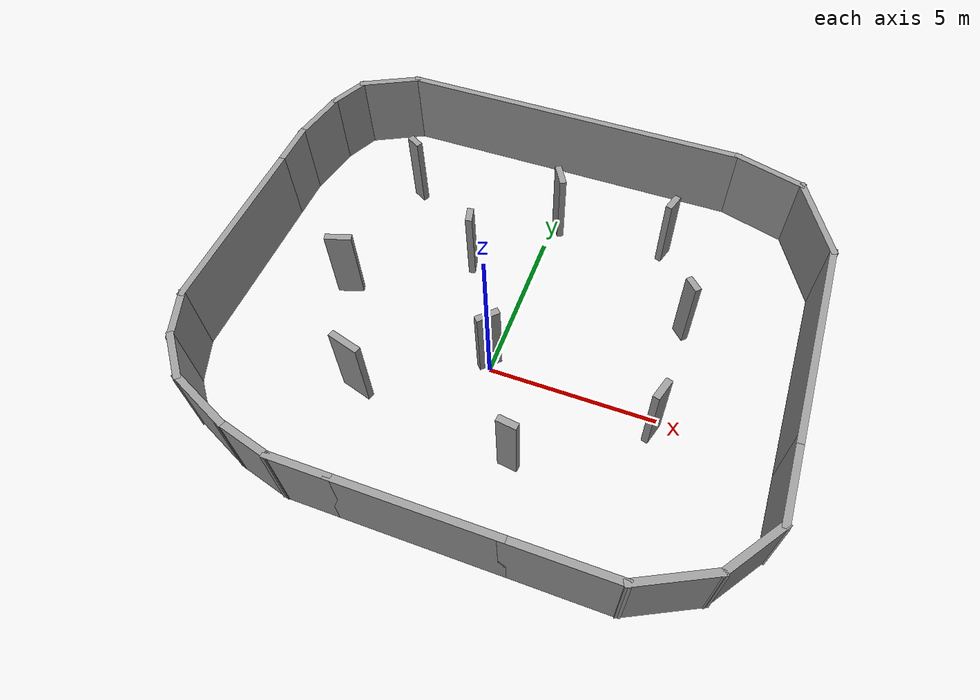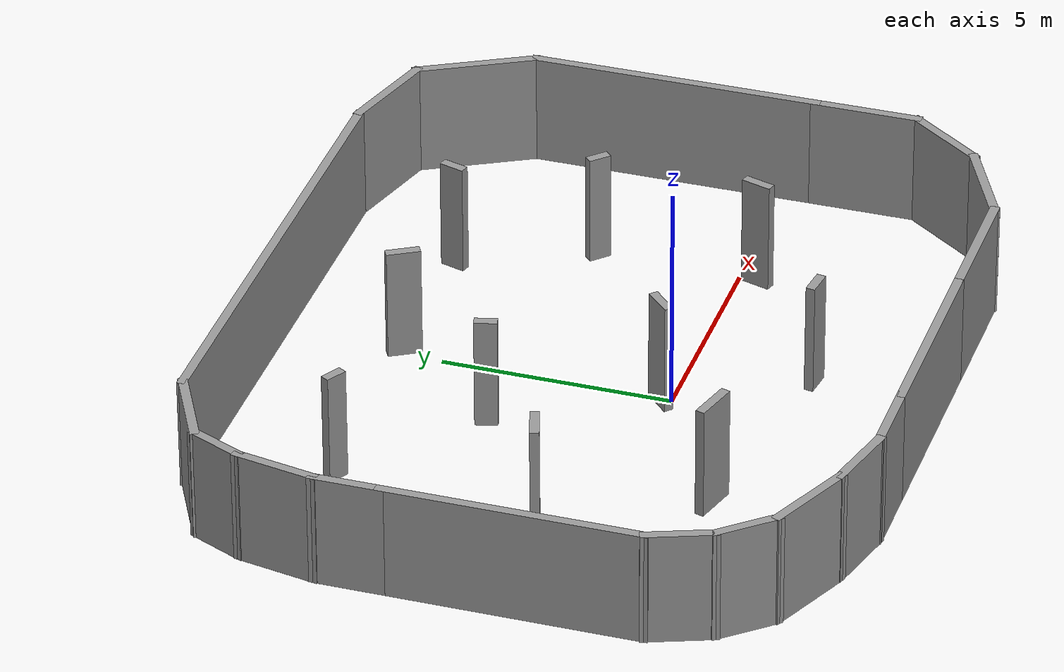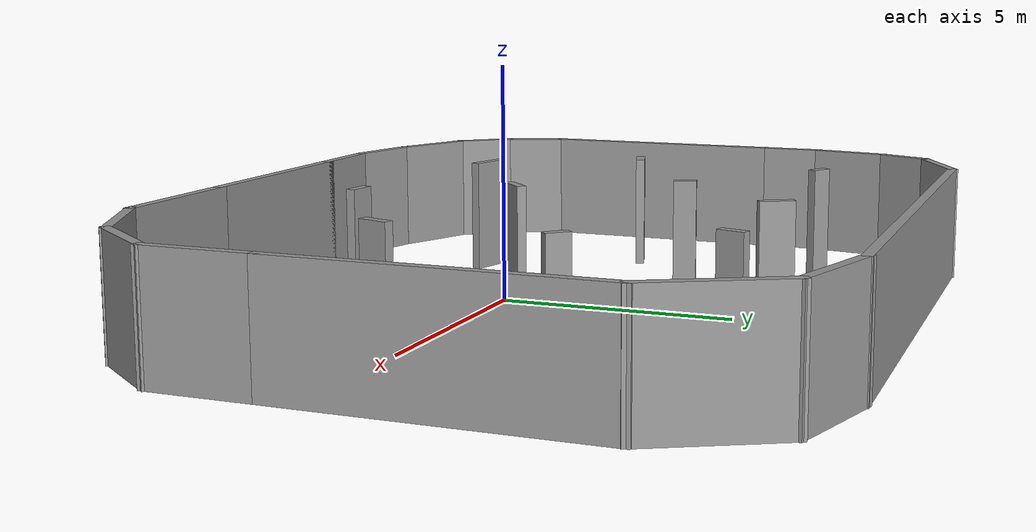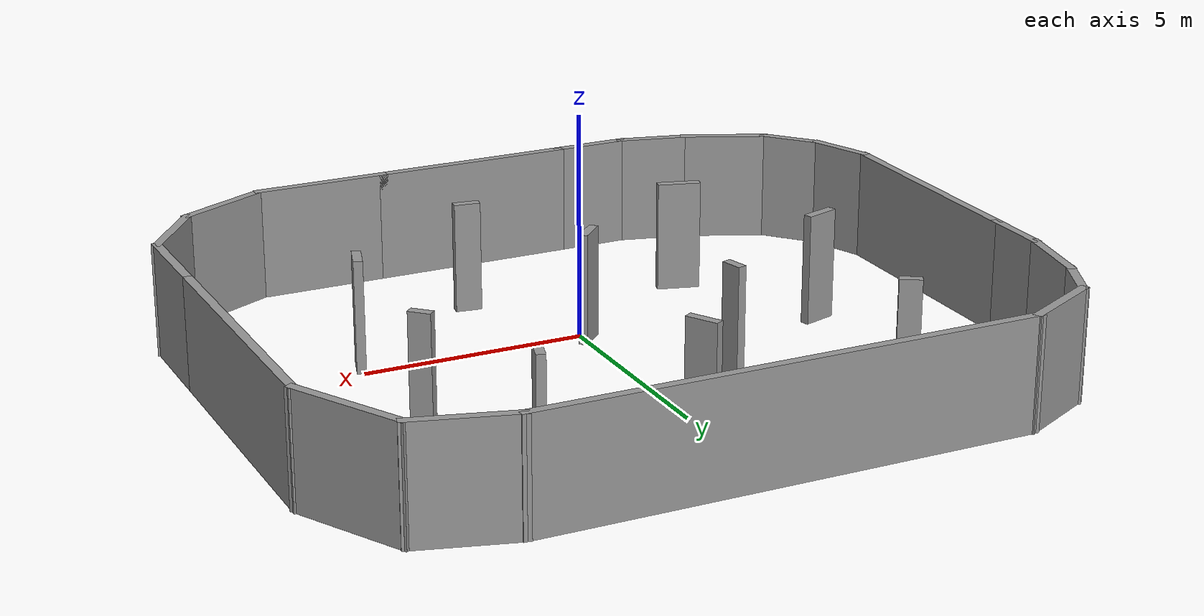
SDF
<?xml version='1.0'?>
<sdf version='1.4'>
  <model name='corridor_basic'>
    <link name='Wall_0'>
      <collision name='Wall_0_Collision'>
        <geometry>
          <box>
            <size>2.05649 0.2 2.5</size>
          </box>
        </geometry>
        <pose>0 0 1.25 0 -0 0</pose>
      </collision>
      <visual name='Wall_0_Visual'>
        <pose>0 0 1.25 0 -0 0</pose>
        <geometry>
          <box>
            <size>2.05649 0.2 2.5</size>
          </box>
        </geometry>
        <material>
          <script>
            <uri>file://media/materials/scripts/gazebo.material</uri>
            <name>Gazebo/Grey</name>
          </script>
        </material>
      </visual>
      <velocity_decay>
        <linear>0</linear>
        <angular>0</angular>
      </velocity_decay>
      <pose>-6.66045 8.13636 0 0 0 -2.66947</pose>
    </link>
    <link name='Wall_1'>
      <collision name='Wall_1_Collision'>
        <geometry>
          <box>
            <size>1.3966 0.2 2.5</size>
          </box>
        </geometry>
        <pose>0 0 1.25 0 -0 0</pose>
      </collision>
      <visual name='Wall_1_Visual'>
        <pose>0 0 1.25 0 -0 0</pose>
        <geometry>
          <box>
            <size>1.3966 0.2 2.5</size>
          </box>
        </geometry>
        <material>
          <script>
            <uri>file://media/materials/scripts/gazebo.material</uri>
            <name>Gazebo/Grey</name>
          </script>
        </material>
      </visual>
      <velocity_decay>
        <linear>0</linear>
        <angular>0</angular>
      </velocity_decay>
      <pose>-7.7334 7.16895 0 0 0 -1.99499</pose>
    </link>
    <link name='Wall_10'>
      <collision name='Wall_10_Collision'>
        <geometry>
          <box>
            <size>4.63252 0.2 2.5</size>
          </box>
        </geometry>
        <pose>0 0 1.25 0 -0 0</pose>
      </collision>
      <visual name='Wall_10_Visual'>
        <pose>0 0 1.25 0 -0 0</pose>
        <geometry>
          <box>
            <size>4.63252 0.2 2.5</size>
          </box>
        </geometry>
        <material>
          <script>
            <uri>file://media/materials/scripts/gazebo.material</uri>
            <name>Gazebo/Grey</name>
          </script>
        </material>
      </visual>
      <velocity_decay>
        <linear>0</linear>
        <angular>0</angular>
      </velocity_decay>
      <pose>0.216996 -5.40746 0 0 -0 0</pose>
    </link>
    <link name='Wall_11'>
      <collision name='Wall_11_Collision'>
        <geometry>
          <box>
            <size>3.15502 0.2 2.5</size>
          </box>
        </geometry>
        <pose>0 0 1.25 0 -0 0</pose>
      </collision>
      <visual name='Wall_11_Visual'>
        <pose>0 0 1.25 0 -0 0</pose>
        <geometry>
          <box>
            <size>3.15502 0.2 2.5</size>
          </box>
        </geometry>
        <material>
          <script>
            <uri>file://media/materials/scripts/gazebo.material</uri>
            <name>Gazebo/Grey</name>
          </script>
        </material>
      </visual>
      <velocity_decay>
        <linear>0</linear>
        <angular>0</angular>
      </velocity_decay>
      <pose>3.91077 -5.40746 0 0 -0 0</pose>
    </link>
    <link name='Wall_12'>
      <collision name='Wall_12_Collision'>
        <geometry>
          <box>
            <size>2.3554 0.2 2.5</size>
          </box>
        </geometry>
        <pose>0 0 1.25 0 -0 0</pose>
      </collision>
      <visual name='Wall_12_Visual'>
        <pose>0 0 1.25 0 -0 0</pose>
        <geometry>
          <box>
            <size>2.3554 0.2 2.5</size>
          </box>
        </geometry>
        <material>
          <script>
            <uri>file://media/materials/scripts/gazebo.material</uri>
            <name>Gazebo/Grey</name>
          </script>
        </material>
      </visual>
      <velocity_decay>
        <linear>0</linear>
        <angular>0</angular>
      </velocity_decay>
      <pose>6.35569 -4.93255 0 0 -0 0.456348</pose>
    </link>
    <link name='Wall_13'>
      <collision name='Wall_13_Collision'>
        <geometry>
          <box>
            <size>2.11393 0.2 2.5</size>
          </box>
        </geometry>
        <pose>0 0 1.25 0 -0 0</pose>
      </collision>
      <visual name='Wall_13_Visual'>
        <pose>0 0 1.25 0 -0 0</pose>
        <geometry>
          <box>
            <size>2.11393 0.2 2.5</size>
          </box>
        </geometry>
        <material>
          <script>
            <uri>file://media/materials/scripts/gazebo.material</uri>
            <name>Gazebo/Grey</name>
          </script>
        </material>
      </visual>
      <velocity_decay>
        <linear>0</linear>
        <angular>0</angular>
      </velocity_decay>
      <pose>7.88597 -3.6837 0 0 -0 0.942</pose>
    </link>
    <link name='Wall_14'>
      <collision name='Wall_14_Collision'>
        <geometry>
          <box>
            <size>2.45144 0.2 2.5</size>
          </box>
        </geometry>
        <pose>0 0 1.25 0 -0 0</pose>
      </collision>
      <visual name='Wall_14_Visual'>
        <pose>0 0 1.25 0 -0 0</pose>
        <geometry>
          <box>
            <size>2.45144 0.2 2.5</size>
          </box>
        </geometry>
        <material>
          <script>
            <uri>file://media/materials/scripts/gazebo.material</uri>
            <name>Gazebo/Grey</name>
          </script>
        </material>
      </visual>
      <velocity_decay>
        <linear>0</linear>
        <angular>0</angular>
      </velocity_decay>
      <pose>8.44883 -1.78405 0 0 -0 1.5708</pose>
    </link>
    <link name='Wall_15'>
      <collision name='Wall_15_Collision'>
        <geometry>
          <box>
            <size>6.497 0.2 2.5</size>
          </box>
        </geometry>
        <pose>0 0 1.25 0 -0 0</pose>
      </collision>
      <visual name='Wall_15_Visual'>
        <pose>0 0 1.25 0 -0 0</pose>
        <geometry>
          <box>
            <size>6.497 0.2 2.5</size>
          </box>
        </geometry>
        <material>
          <script>
            <uri>file://media/materials/scripts/gazebo.material</uri>
            <name>Gazebo/Grey</name>
          </script>
        </material>
      </visual>
      <velocity_decay>
        <linear>0</linear>
        <angular>0</angular>
      </velocity_decay>
      <pose>8.44883 2.49017 0 0 -0 1.5708</pose>
    </link>
    <link name='Wall_16'>
      <collision name='Wall_16_Collision'>
        <geometry>
          <box>
            <size>2.82807 0.2 2.5</size>
          </box>
        </geometry>
        <pose>0 0 1.25 0 -0 0</pose>
      </collision>
      <visual name='Wall_16_Visual'>
        <pose>0 0 1.25 0 -0 0</pose>
        <geometry>
          <box>
            <size>2.82807 0.2 2.5</size>
          </box>
        </geometry>
        <material>
          <script>
            <uri>file://media/materials/scripts/gazebo.material</uri>
            <name>Gazebo/Grey</name>
          </script>
        </material>
      </visual>
      <velocity_decay>
        <linear>0</linear>
        <angular>0</angular>
      </velocity_decay>
      <pose>7.8332 6.79957 0 0 -0 2.05839</pose>
    </link>
    <link name='Wall_17'>
      <collision name='Wall_17_Collision'>
        <geometry>
          <box>
            <size>2.35999 0.2 2.5</size>
          </box>
        </geometry>
        <pose>0 0 1.25 0 -0 0</pose>
      </collision>
      <visual name='Wall_17_Visual'>
        <pose>0 0 1.25 0 -0 0</pose>
        <geometry>
          <box>
            <size>2.35999 0.2 2.5</size>
          </box>
        </geometry>
        <material>
          <script>
            <uri>file://media/materials/scripts/gazebo.material</uri>
            <name>Gazebo/Grey</name>
          </script>
        </material>
      </visual>
      <velocity_decay>
        <linear>0</linear>
        <angular>0</angular>
      </velocity_decay>
      <pose>6.1798 8.25949 0 0 -0 2.86106</pose>
    </link>
    <link name='Wall_18'>
      <collision name='Wall_18_Collision'>
        <geometry>
          <box>
            <size>11.1758 0.2 2.5</size>
          </box>
        </geometry>
        <pose>0 0 1.25 0 -0 0</pose>
      </collision>
      <visual name='Wall_18_Visual'>
        <pose>0 0 1.25 0 -0 0</pose>
        <geometry>
          <box>
            <size>11.1758 0.2 2.5</size>
          </box>
        </geometry>
        <material>
          <script>
            <uri>file://media/materials/scripts/gazebo.material</uri>
            <name>Gazebo/Grey</name>
          </script>
        </material>
      </visual>
      <velocity_decay>
        <linear>0</linear>
        <angular>0</angular>
      </velocity_decay>
      <pose>-0.345864 8.55851 0 0 -0 3.14159</pose>
    </link>
    <link name='Wall_2'>
      <collision name='Wall_2_Collision'>
        <geometry>
          <box>
            <size>1.91801 0.2 2.5</size>
          </box>
        </geometry>
        <pose>0 0 1.25 0 -0 0</pose>
      </collision>
      <visual name='Wall_2_Visual'>
        <pose>0 0 1.25 0 -0 0</pose>
        <geometry>
          <box>
            <size>1.91801 0.2 2.5</size>
          </box>
        </geometry>
        <material>
          <script>
            <uri>file://media/materials/scripts/gazebo.material</uri>
            <name>Gazebo/Grey</name>
          </script>
        </material>
      </visual>
      <velocity_decay>
        <linear>0</linear>
        <angular>0</angular>
      </velocity_decay>
      <pose>-8.13796 5.77939 0 0 0 -1.75614</pose>
    </link>
    <link name='Wall_20'>
      <collision name='Wall_20_Collision'>
        <geometry>
          <box>
            <size>0.48362 0.2 2.5</size>
          </box>
        </geometry>
        <pose>0 0 1.25 0 -0 0</pose>
      </collision>
      <visual name='Wall_20_Visual'>
        <pose>0 0 1.25 0 -0 0</pose>
        <geometry>
          <box>
            <size>0.48362 0.2 2.5</size>
          </box>
        </geometry>
        <material>
          <script>
            <uri>file://media/materials/scripts/gazebo.material</uri>
            <name>Gazebo/Grey</name>
          </script>
        </material>
      </visual>
      <velocity_decay>
        <linear>0</linear>
        <angular>0</angular>
      </velocity_decay>
      <pose>-4.69044 5.74421 0 0 0 -0.519146</pose>
    </link>
    <link name='Wall_22'>
      <collision name='Wall_22_Collision'>
        <geometry>
          <box>
            <size>0.789704 0.2 2.5</size>
          </box>
        </geometry>
        <pose>0 0 1.25 0 -0 0</pose>
      </collision>
      <visual name='Wall_22_Visual'>
        <pose>0 0 1.25 0 -0 0</pose>
        <geometry>
          <box>
            <size>0.789704 0.2 2.5</size>
          </box>
        </geometry>
        <material>
          <script>
            <uri>file://media/materials/scripts/gazebo.material</uri>
            <name>Gazebo/Grey</name>
          </script>
        </material>
      </visual>
      <velocity_decay>
        <linear>0</linear>
        <angular>0</angular>
      </velocity_decay>
      <pose>-5.16535 1.32927 0 0 -0 0.302885</pose>
    </link>
    <link name='Wall_25'>
      <collision name='Wall_25_Collision'>
        <geometry>
          <box>
            <size>0.736981 0.2 2.5</size>
          </box>
        </geometry>
        <pose>0 0 1.25 0 -0 0</pose>
      </collision>
      <visual name='Wall_25_Visual'>
        <pose>0 0 1.25 0 -0 0</pose>
        <geometry>
          <box>
            <size>0.736981 0.2 2.5</size>
          </box>
        </geometry>
        <material>
          <script>
            <uri>file://media/materials/scripts/gazebo.material</uri>
            <name>Gazebo/Grey</name>
          </script>
        </material>
      </visual>
      <velocity_decay>
        <linear>0</linear>
        <angular>0</angular>
      </velocity_decay>
      <pose>0.140169 5.89865 0 0 0 -1.0472</pose>
    </link>
    <link name='Wall_28'>
      <collision name='Wall_28_Collision'>
        <geometry>
          <box>
            <size>0.968316 0.2 2.5</size>
          </box>
        </geometry>
        <pose>0 0 1.25 0 -0 0</pose>
      </collision>
      <visual name='Wall_28_Visual'>
        <pose>0 0 1.25 0 -0 0</pose>
        <geometry>
          <box>
            <size>0.968316 0.2 2.5</size>
          </box>
        </geometry>
        <material>
          <script>
            <uri>file://media/materials/scripts/gazebo.material</uri>
            <name>Gazebo/Grey</name>
          </script>
        </material>
      </visual>
      <velocity_decay>
        <linear>0</linear>
        <angular>0</angular>
      </velocity_decay>
      <pose>-3.35365 -1.85441 0 0 0 -0.2783</pose>
    </link>
    <link name='Wall_3'>
      <collision name='Wall_3_Collision'>
        <geometry>
          <box>
            <size>1.60715 0.2 2.5</size>
          </box>
        </geometry>
        <pose>0 0 1.25 0 -0 0</pose>
      </collision>
      <visual name='Wall_3_Visual'>
        <pose>0 0 1.25 0 -0 0</pose>
        <geometry>
          <box>
            <size>1.60715 0.2 2.5</size>
          </box>
        </geometry>
        <material>
          <script>
            <uri>file://media/materials/scripts/gazebo.material</uri>
            <name>Gazebo/Grey</name>
          </script>
        </material>
      </visual>
      <velocity_decay>
        <linear>0</linear>
        <angular>0</angular>
      </velocity_decay>
      <pose>-8.29627 4.23152 0 0 0 -1.5708</pose>
    </link>
    <link name='Wall_30'>
      <collision name='Wall_30_Collision'>
        <geometry>
          <box>
            <size>0.697503 0.2 2.5</size>
          </box>
        </geometry>
        <pose>0 0 1.25 0 -0 0</pose>
      </collision>
      <visual name='Wall_30_Visual'>
        <pose>0 0 1.25 0 -0 0</pose>
        <geometry>
          <box>
            <size>0.697503 0.2 2.5</size>
          </box>
        </geometry>
        <material>
          <script>
            <uri>file://media/materials/scripts/gazebo.material</uri>
            <name>Gazebo/Grey</name>
          </script>
        </material>
      </visual>
      <velocity_decay>
        <linear>0</linear>
        <angular>0</angular>
      </velocity_decay>
      <pose>-0.099612 0.22114 0 0 -0 0.785398</pose>
    </link>
    <link name='Wall_32'>
      <collision name='Wall_32_Collision'>
        <geometry>
          <box>
            <size>0.498502 0.2 2.5</size>
          </box>
        </geometry>
        <pose>0 0 1.25 0 -0 0</pose>
      </collision>
      <visual name='Wall_32_Visual'>
        <pose>0 0 1.25 0 -0 0</pose>
        <geometry>
          <box>
            <size>0.498502 0.2 2.5</size>
          </box>
        </geometry>
        <material>
          <script>
            <uri>file://media/materials/scripts/gazebo.material</uri>
            <name>Gazebo/Grey</name>
          </script>
        </material>
      </visual>
      <velocity_decay>
        <linear>0</linear>
        <angular>0</angular>
      </velocity_decay>
      <pose>4.93095 3.14098 0 0 0 -0.785398</pose>
    </link>
    <link name='Wall_34'>
      <collision name='Wall_34_Collision'>
        <geometry>
          <box>
            <size>0.588562 0.2 2.5</size>
          </box>
        </geometry>
        <pose>0 0 1.25 0 -0 0</pose>
      </collision>
      <visual name='Wall_34_Visual'>
        <pose>0 0 1.25 0 -0 0</pose>
        <geometry>
          <box>
            <size>0.588562 0.2 2.5</size>
          </box>
        </geometry>
        <material>
          <script>
            <uri>file://media/materials/scripts/gazebo.material</uri>
            <name>Gazebo/Grey</name>
          </script>
        </material>
      </visual>
      <velocity_decay>
        <linear>0</linear>
        <angular>0</angular>
      </velocity_decay>
      <pose>1.53534 -2.61852 0 0 0 -0.1309</pose>
    </link>
    <link name='Wall_36'>
      <collision name='Wall_36_Collision'>
        <geometry>
          <box>
            <size>0.678483 0.2 2.5</size>
          </box>
        </geometry>
        <pose>0 0 1.25 0 -0 0</pose>
      </collision>
      <visual name='Wall_36_Visual'>
        <pose>0 0 1.25 0 -0 0</pose>
        <geometry>
          <box>
            <size>0.678483 0.2 2.5</size>
          </box>
        </geometry>
        <material>
          <script>
            <uri>file://media/materials/scripts/gazebo.material</uri>
            <name>Gazebo/Grey</name>
          </script>
        </material>
      </visual>
      <velocity_decay>
        <linear>0</linear>
        <angular>0</angular>
      </velocity_decay>
      <pose>4.93095 -0.394488 0 0 -0 1.2723</pose>
    </link>
    <link name='Wall_4'>
      <collision name='Wall_4_Collision'>
        <geometry>
          <box>
            <size>5.65271 0.2 2.5</size>
          </box>
        </geometry>
        <pose>0 0 1.25 0 -0 0</pose>
      </collision>
      <visual name='Wall_4_Visual'>
        <pose>0 0 1.25 0 -0 0</pose>
        <geometry>
          <box>
            <size>5.65271 0.2 2.5</size>
          </box>
        </geometry>
        <material>
          <script>
            <uri>file://media/materials/scripts/gazebo.material</uri>
            <name>Gazebo/Grey</name>
          </script>
        </material>
      </visual>
      <velocity_decay>
        <linear>0</linear>
        <angular>0</angular>
      </velocity_decay>
      <pose>-8.29627 0.80159 0 0 0 -1.5708</pose>
    </link>
    <link name='Wall_40'>
      <collision name='Wall_40_Collision'>
        <geometry>
          <box>
            <size>0.567277 0.2 2.5</size>
          </box>
        </geometry>
        <pose>0 0 1.25 0 -0 0</pose>
      </collision>
      <visual name='Wall_40_Visual'>
        <pose>0 0 1.25 0 -0 0</pose>
        <geometry>
          <box>
            <size>0.567277 0.2 2.5</size>
          </box>
        </geometry>
        <material>
          <script>
            <uri>file://media/materials/scripts/gazebo.material</uri>
            <name>Gazebo/Grey</name>
          </script>
        </material>
      </visual>
      <velocity_decay>
        <linear>0</linear>
        <angular>0</angular>
      </velocity_decay>
      <pose>3.6821 5.95528 0 0 0 -1.86225</pose>
    </link>
    <link name='Wall_44'>
      <collision name='Wall_44_Collision'>
        <geometry>
          <box>
            <size>0.490092 0.2 2.5</size>
          </box>
        </geometry>
        <pose>0 0 1.25 0 -0 0</pose>
      </collision>
      <visual name='Wall_44_Visual'>
        <pose>0 0 1.25 0 -0 0</pose>
        <geometry>
          <box>
            <size>0.490092 0.2 2.5</size>
          </box>
        </geometry>
        <material>
          <script>
            <uri>file://media/materials/scripts/gazebo.material</uri>
            <name>Gazebo/Grey</name>
          </script>
        </material>
      </visual>
      <velocity_decay>
        <linear>0</linear>
        <angular>0</angular>
      </velocity_decay>
      <pose>-1.89373 3.42241 0 0 -0 1.81577</pose>
    </link>
    <link name='Wall_5'>
      <collision name='Wall_5_Collision'>
        <geometry>
          <box>
            <size>1.59167 0.2 2.5</size>
          </box>
        </geometry>
        <pose>0 0 1.25 0 -0 0</pose>
      </collision>
      <visual name='Wall_5_Visual'>
        <pose>0 0 1.25 0 -0 0</pose>
        <geometry>
          <box>
            <size>1.59167 0.2 2.5</size>
          </box>
        </geometry>
        <material>
          <script>
            <uri>file://media/materials/scripts/gazebo.material</uri>
            <name>Gazebo/Grey</name>
          </script>
        </material>
      </visual>
      <velocity_decay>
        <linear>0</linear>
        <angular>0</angular>
      </velocity_decay>
      <pose>-8.05001 -2.57557 0 0 0 -1.20907</pose>
    </link>
    <link name='Wall_6'>
      <collision name='Wall_6_Collision'>
        <geometry>
          <box>
            <size>1.54694 0.2 2.5</size>
          </box>
        </geometry>
        <pose>0 0 1.25 0 -0 0</pose>
      </collision>
      <visual name='Wall_6_Visual'>
        <pose>0 0 1.25 0 -0 0</pose>
        <geometry>
          <box>
            <size>1.54694 0.2 2.5</size>
          </box>
        </geometry>
        <material>
          <script>
            <uri>file://media/materials/scripts/gazebo.material</uri>
            <name>Gazebo/Grey</name>
          </script>
        </material>
      </visual>
      <velocity_decay>
        <linear>0</linear>
        <angular>0</angular>
      </velocity_decay>
      <pose>-7.36403 -3.73647 0 0 0 -0.859337</pose>
    </link>
    <link name='Wall_7'>
      <collision name='Wall_7_Collision'>
        <geometry>
          <box>
            <size>2.12168 0.2 2.5</size>
          </box>
        </geometry>
        <pose>0 0 1.25 0 -0 0</pose>
      </collision>
      <visual name='Wall_7_Visual'>
        <pose>0 0 1.25 0 -0 0</pose>
        <geometry>
          <box>
            <size>2.12168 0.2 2.5</size>
          </box>
        </geometry>
        <material>
          <script>
            <uri>file://media/materials/scripts/gazebo.material</uri>
            <name>Gazebo/Grey</name>
          </script>
        </material>
      </visual>
      <velocity_decay>
        <linear>0</linear>
        <angular>0</angular>
      </velocity_decay>
      <pose>-6.04482 -4.63353 0 0 0 -0.414507</pose>
    </link>
    <link name='Wall_8'>
      <collision name='Wall_8_Collision'>
        <geometry>
          <box>
            <size>1.7614 0.2 2.5</size>
          </box>
        </geometry>
        <pose>0 0 1.25 0 -0 0</pose>
      </collision>
      <visual name='Wall_8_Visual'>
        <pose>0 0 1.25 0 -0 0</pose>
        <geometry>
          <box>
            <size>1.7614 0.2 2.5</size>
          </box>
        </geometry>
        <material>
          <script>
            <uri>file://media/materials/scripts/gazebo.material</uri>
            <name>Gazebo/Grey</name>
          </script>
        </material>
      </visual>
      <velocity_decay>
        <linear>0</linear>
        <angular>0</angular>
      </velocity_decay>
      <pose>-4.40901 -5.21398 0 0 0 -0.250443</pose>
    </link>
    <link name='Wall_9'>
      <collision name='Wall_9_Collision'>
        <geometry>
          <box>
            <size>1.8534 0.2 2.5</size>
          </box>
        </geometry>
        <pose>0 0 1.25 0 -0 0</pose>
      </collision>
      <visual name='Wall_9_Visual'>
        <pose>0 0 1.25 0 -0 0</pose>
        <geometry>
          <box>
            <size>1.8534 0.2 2.5</size>
          </box>
        </geometry>
        <material>
          <script>
            <uri>file://media/materials/scripts/gazebo.material</uri>
            <name>Gazebo/Grey</name>
          </script>
        </material>
      </visual>
      <velocity_decay>
        <linear>0</linear>
        <angular>0</angular>
      </velocity_decay>
      <pose>-2.82597 -5.40746 0 0 -0 0</pose>
    </link>
    <static>1</static>
  </model>
</sdf>
